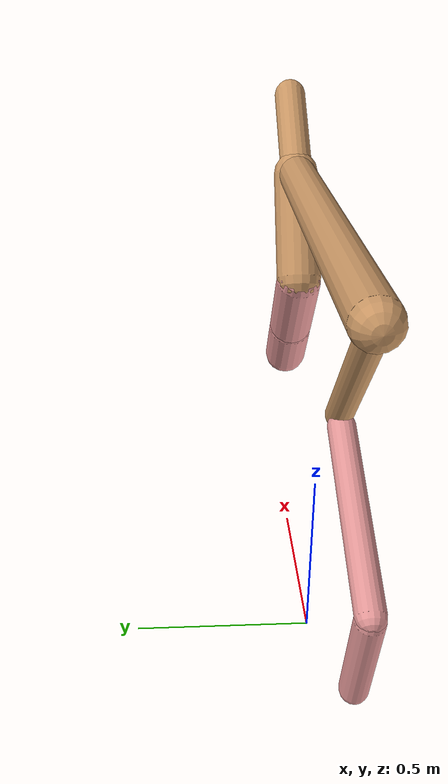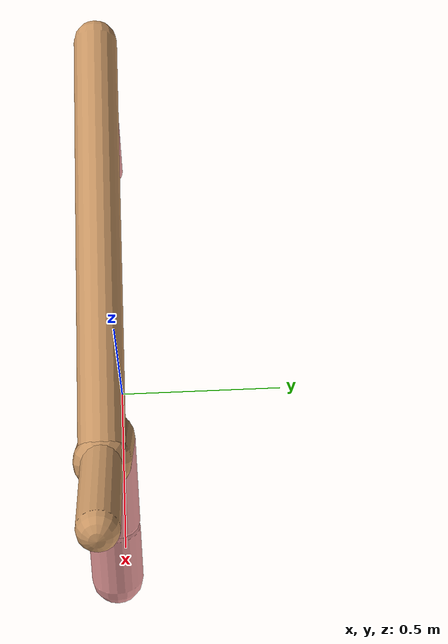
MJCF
<mujoco model="cheetah">
  <compiler angle="radian" coordinate="local" inertiafromgeom="true" settotalmass="14" />
  <default>
    <joint armature=".1" damping=".01" limited="true" solimplimit="0 .8 .03" solreflimit=".02 1" stiffness="8" />
    <geom conaffinity="0" condim="3" contype="1" friction="0.8 .1 .1" rgba="0.8 0.6 .4 1" solimp="0.0 0.8 0.01" solref="0.02 1" />
    <motor ctrllimited="true" ctrlrange="-1 1" />
  </default>
  <size nstack="300000" nuser_geom="1" />
  <option gravity="0 0 -9.81" timestep="0.01" />
  <worldbody>
    <body name="torso" pos="0.0 0.0 1.1969312719364118">
      <joint armature="0" axis="1 0 0" damping="0" limited="false" name="ignorex" pos="0 0 0" stiffness="0" type="slide" />
      <joint armature="0" axis="0 0 1" damping="0" limited="false" name="ignorez" pos="0 0 0" stiffness="0" type="slide" />
      <joint armature="0" axis="0 1 0" damping="0" limited="false" name="ignorey" pos="0 0 0" stiffness="0" type="hinge" />
      <geom fromto="-0.5 0.0 0.0 0.6459643737390031 0.0 0.0" name="torso" size="0.05533923073467351" type="capsule" />
      <geom axisangle="0 1 0 .87" name="head" pos="0.745964373739003 0.0 0.1" size="0.048411091328012 0.15" type="capsule" />

      <body name="bthigh" pos="-.5 0 0">
        <joint axis="0 1 0" damping="6" name="bthigh" pos="0 0 0" range="-.52 1.05" stiffness="240" type="hinge" />
        <geom axisangle="0 1 0 -3.8" name="bthigh" pos="0.1372311270049504 0.0 -0.17840046510643554" size="0.0322 0.20606358850066075" type="capsule" />
        <body name="bshin" pos="0.2344622540099008 0.0 -0.34680093021287106">
          <joint axis="0 1 0" damping="4.5" name="bshin" pos="0 0 0" range="-.785 .785" stiffness="180" type="hinge" />
          <geom axisangle="0 1 0 -2.03" name="bshin" pos="-0.19650027648450427 0.0 -0.09825013824225214" rgba="0.9 0.6 0.6 1" size="0.0322 0.21316922948344216" type="capsule" />
          <body name="bfoot" pos="-0.39300055296900854 0.0 -0.19650027648450427">
            <joint axis="0 1 0" damping="3" name="bfoot" pos="0 0 0" range="-.4 .785" stiffness="120" type="hinge" />
            <geom axisangle="0 1 0 -.27" name="bfoot" pos="0.04169647936580852 0.0 -0.13481861661611422" rgba="0.9 0.6 0.6 1" size="0.0322 0.13358605047629044" type="capsule" />
            <inertial mass="10" />
          </body>
        </body>
      </body>
      <body name="fthigh" pos="0.6459643737390031 0.0 0.0">
        <joint axis="0 1 0" damping="4.5" name="fthigh" pos="0 0 0" range="-1.5 0.8" stiffness="180" type="hinge" />
        <geom axisangle="0 1 0 .52" name="fthigh" pos="-0.08424729511667486 0.0 -0.14442393448572832" size="0.06736097018416504 0.16127567848708102" type="capsule" />
        <body name="fshin" pos="-0.16849459023334973 0.0 -0.28884786897145664">
          <joint axis="0 1 0" damping="3" name="fshin" pos="0 0 0" range="-1.2 1.1" stiffness="120" type="hinge" />
          <geom axisangle="0 1 0 -.6" name="fshin" pos="0.07819432422345086 0.0 -0.1082690643093935" rgba="0.9 0.6 0.6 1" size="0.06736097018416504 0.1285355031551172" type="capsule" />
          <body name="ffoot" pos="0.15638864844690173 0.0 -0.216538128618787">
            <joint axis="0 1 0" damping="1.5" name="ffoot" pos="0 0 0" range="-3.1 -0.3" stiffness="60" type="hinge" />
            <geom axisangle="0 1 0 -.6" name="ffoot" pos="0.05304751989022571 0.0 -0.08251836427368445" rgba="0.9 0.6 0.6 1" size="0.06736097018416504 0.08488193604583212" type="capsule" />
            <inertial mass="10" />
          </body>
        </body>
      </body>
    </body>
  </worldbody>
  <actuator>
    <motor gear="120" joint="bthigh" name="bthigh" />
    <motor gear="90" joint="bshin" name="bshin" />
    <motor gear="60" joint="bfoot" name="bfoot" />
    <motor gear="120" joint="fthigh" name="fthigh" />
    <motor gear="60" joint="fshin" name="fshin" />
    <motor gear="30" joint="ffoot" name="ffoot" />
  </actuator>
</mujoco>
